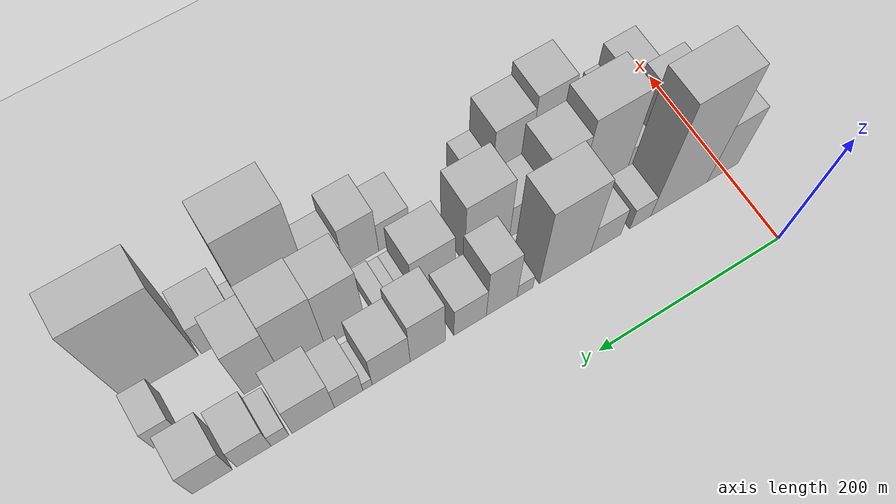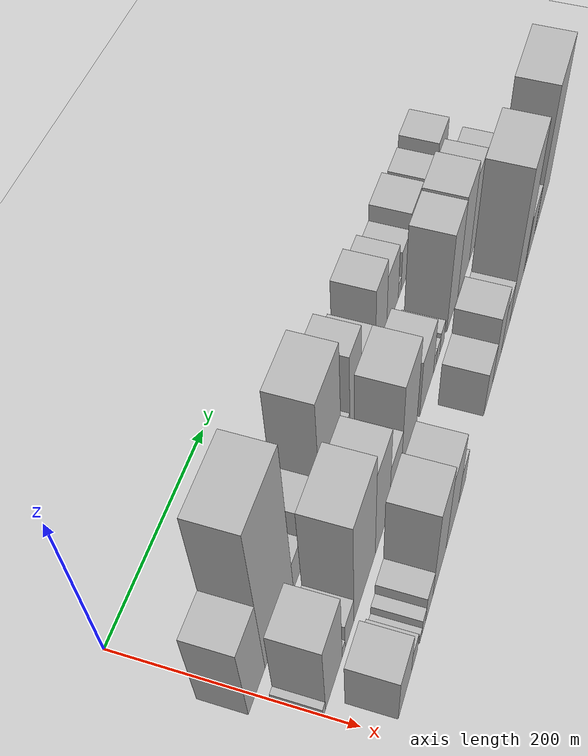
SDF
<sdf version="1.6">
 <world name="default">
  <include>
   <name>ground_plane_2</name>
   <uri>model://HANNAS_ground_plane</uri>
   <pose>100 0 0  0 0 0</pose>
  </include>
  <model name="building_16">
   <static>1</static>
   <pose>100.0000 3.0005 0 0.000000 0.000000 0.000000</pose>
   <link name="link">
    <pose>0 0 55.50 0 0 0</pose>
    <collision name="collision"><geometry><box><size>40.0000 35.9050 111.0000</size></box></geometry></collision>
    <visual name="visual">
     <cast_shadows>0</cast_shadows>
     <geometry><box><size>40.0000 35.9050 111.0000</size></box></geometry>
     <material>
      <script>
       <uri>model://HANNAS_wall/materials/scripts</uri>
       <uri>model://HANNAS_wall/materials/textures</uri>
       <name>vrc/HANNAS_wall</name>
      </script>
     </material>
    </visual>
   </link>
  </model>
  <model name="building_17">
   <static>1</static>
   <pose>100.0000 53.5414 0 0.000000 0.000000 0.000000</pose>
   <link name="link">
    <pose>0 0 106.50 0 0 0</pose>
    <collision name="collision"><geometry><box><size>40.0000 65.1768 213.0000</size></box></geometry></collision>
    <visual name="visual">
     <cast_shadows>0</cast_shadows>
     <geometry><box><size>40.0000 65.1768 213.0000</size></box></geometry>
     <material>
      <script>
       <uri>model://HANNAS_wall/materials/scripts</uri>
       <uri>model://HANNAS_wall/materials/textures</uri>
       <name>vrc/HANNAS_wall</name>
      </script>
     </material>
    </visual>
   </link>
  </model>
  <model name="building_18">
   <static>1</static>
   <pose>100.0000 98.0382 0 0.000000 0.000000 0.000000</pose>
   <link name="link">
    <pose>0 0 21.00 0 0 0</pose>
    <collision name="collision"><geometry><box><size>40.0000 23.8167 42.0000</size></box></geometry></collision>
    <visual name="visual">
     <cast_shadows>0</cast_shadows>
     <geometry><box><size>40.0000 23.8167 42.0000</size></box></geometry>
     <material>
      <script>
       <uri>model://HANNAS_wall/materials/scripts</uri>
       <uri>model://HANNAS_wall/materials/textures</uri>
       <name>vrc/HANNAS_wall</name>
      </script>
     </material>
    </visual>
   </link>
  </model>
  <model name="building_19">
   <static>1</static>
   <pose>100.0000 136.8431 0 0.000000 0.000000 0.000000</pose>
   <link name="link">
    <pose>0 0 28.50 0 0 0</pose>
    <collision name="collision"><geometry><box><size>40.0000 33.7931 57.0000</size></box></geometry></collision>
    <visual name="visual">
     <cast_shadows>0</cast_shadows>
     <geometry><box><size>40.0000 33.7931 57.0000</size></box></geometry>
     <material>
      <script>
       <uri>model://HANNAS_wall/materials/scripts</uri>
       <uri>model://HANNAS_wall/materials/textures</uri>
       <name>vrc/HANNAS_wall</name>
      </script>
     </material>
    </visual>
   </link>
  </model>
  <model name="building_20">
   <static>1</static>
   <pose>100.0000 181.7698 0 0.000000 0.000000 0.000000</pose>
   <link name="link">
    <pose>0 0 79.50 0 0 0</pose>
    <collision name="collision"><geometry><box><size>40.0000 56.0602 159.0000</size></box></geometry></collision>
    <visual name="visual">
     <cast_shadows>0</cast_shadows>
     <geometry><box><size>40.0000 56.0602 159.0000</size></box></geometry>
     <material>
      <script>
       <uri>model://HANNAS_wall/materials/scripts</uri>
       <uri>model://HANNAS_wall/materials/textures</uri>
       <name>vrc/HANNAS_wall</name>
      </script>
     </material>
    </visual>
   </link>
  </model>
  <model name="building_21">
   <static>1</static>
   <pose>100.0000 225.4258 0 0.000000 0.000000 0.000000</pose>
   <link name="link">
    <pose>0 0 15.00 0 0 0</pose>
    <collision name="collision"><geometry><box><size>40.0000 17.2519 30.0000</size></box></geometry></collision>
    <visual name="visual">
     <cast_shadows>0</cast_shadows>
     <geometry><box><size>40.0000 17.2519 30.0000</size></box></geometry>
     <material>
      <script>
       <uri>model://HANNAS_wall/materials/scripts</uri>
       <uri>model://HANNAS_wall/materials/textures</uri>
       <name>vrc/HANNAS_wall</name>
      </script>
     </material>
    </visual>
   </link>
  </model>
  <model name="building_22">
   <static>1</static>
   <pose>100.0000 250.4001 0 0.000000 0.000000 0.000000</pose>
   <link name="link">
    <pose>0 0 54.00 0 0 0</pose>
    <collision name="collision"><geometry><box><size>40.0000 32.6967 108.0000</size></box></geometry></collision>
    <visual name="visual">
     <cast_shadows>0</cast_shadows>
     <geometry><box><size>40.0000 32.6967 108.0000</size></box></geometry>
     <material>
      <script>
       <uri>model://HANNAS_wall/materials/scripts</uri>
       <uri>model://HANNAS_wall/materials/textures</uri>
       <name>vrc/HANNAS_wall</name>
      </script>
     </material>
    </visual>
   </link>
  </model>
  <model name="building_23">
   <static>1</static>
   <pose>100.0000 283.7714 0 0.000000 0.000000 0.000000</pose>
   <link name="link">
    <pose>0 0 33.00 0 0 0</pose>
    <collision name="collision"><geometry><box><size>40.0000 34.0458 66.0000</size></box></geometry></collision>
    <visual name="visual">
     <cast_shadows>0</cast_shadows>
     <geometry><box><size>40.0000 34.0458 66.0000</size></box></geometry>
     <material>
      <script>
       <uri>model://HANNAS_wall/materials/scripts</uri>
       <uri>model://HANNAS_wall/materials/textures</uri>
       <name>vrc/HANNAS_wall</name>
      </script>
     </material>
    </visual>
   </link>
  </model>
  <model name="building_24">
   <static>1</static>
   <pose>100.0000 327.9135 0 0.000000 0.000000 0.000000</pose>
   <link name="link">
    <pose>0 0 49.50 0 0 0</pose>
    <collision name="collision"><geometry><box><size>40.0000 36.2383 99.0000</size></box></geometry></collision>
    <visual name="visual">
     <cast_shadows>0</cast_shadows>
     <geometry><box><size>40.0000 36.2383 99.0000</size></box></geometry>
     <material>
      <script>
       <uri>model://HANNAS_wall/materials/scripts</uri>
       <uri>model://HANNAS_wall/materials/textures</uri>
       <name>vrc/HANNAS_wall</name>
      </script>
     </material>
    </visual>
   </link>
  </model>
  <model name="building_25">
   <static>1</static>
   <pose>100.0000 365.3858 0 0.000000 0.000000 0.000000</pose>
   <link name="link">
    <pose>0 0 37.50 0 0 0</pose>
    <collision name="collision"><geometry><box><size>40.0000 38.7064 75.0000</size></box></geometry></collision>
    <visual name="visual">
     <cast_shadows>0</cast_shadows>
     <geometry><box><size>40.0000 38.7064 75.0000</size></box></geometry>
     <material>
      <script>
       <uri>model://HANNAS_wall/materials/scripts</uri>
       <uri>model://HANNAS_wall/materials/textures</uri>
       <name>vrc/HANNAS_wall</name>
      </script>
     </material>
    </visual>
   </link>
  </model>
  <model name="building_26">
   <static>1</static>
   <pose>100.0000 389.5115 0 0.000000 0.000000 0.000000</pose>
   <link name="link">
    <pose>0 0 10.50 0 0 0</pose>
    <collision name="collision"><geometry><box><size>40.0000 9.5450 21.0000</size></box></geometry></collision>
    <visual name="visual">
     <cast_shadows>0</cast_shadows>
     <geometry><box><size>40.0000 9.5450 21.0000</size></box></geometry>
     <material>
      <script>
       <uri>model://HANNAS_wall/materials/scripts</uri>
       <uri>model://HANNAS_wall/materials/textures</uri>
       <name>vrc/HANNAS_wall</name>
      </script>
     </material>
    </visual>
   </link>
  </model>
  <model name="building_27">
   <static>1</static>
   <pose>100.0000 408.4193 0 0.000000 0.000000 0.000000</pose>
   <link name="link">
    <pose>0 0 27.00 0 0 0</pose>
    <collision name="collision"><geometry><box><size>40.0000 28.2707 54.0000</size></box></geometry></collision>
    <visual name="visual">
     <cast_shadows>0</cast_shadows>
     <geometry><box><size>40.0000 28.2707 54.0000</size></box></geometry>
     <material>
      <script>
       <uri>model://HANNAS_wall/materials/scripts</uri>
       <uri>model://HANNAS_wall/materials/textures</uri>
       <name>vrc/HANNAS_wall</name>
      </script>
     </material>
    </visual>
   </link>
  </model>
  <model name="building_28">
   <static>1</static>
   <pose>100.0000 443.5147 0 0.000000 0.000000 0.000000</pose>
   <link name="link">
    <pose>0 0 37.50 0 0 0</pose>
    <collision name="collision"><geometry><box><size>40.0000 41.9201 75.0000</size></box></geometry></collision>
    <visual name="visual">
     <cast_shadows>0</cast_shadows>
     <geometry><box><size>40.0000 41.9201 75.0000</size></box></geometry>
     <material>
      <script>
       <uri>model://HANNAS_wall/materials/scripts</uri>
       <uri>model://HANNAS_wall/materials/textures</uri>
       <name>vrc/HANNAS_wall</name>
      </script>
     </material>
    </visual>
   </link>
  </model>
  <model name="building_29">
   <static>1</static>
   <pose>100.0000 476.2068 0 0.000000 0.000000 0.000000</pose>
   <link name="link">
    <pose>0 0 16.50 0 0 0</pose>
    <collision name="collision"><geometry><box><size>40.0000 17.4642 33.0000</size></box></geometry></collision>
    <visual name="visual">
     <cast_shadows>0</cast_shadows>
     <geometry><box><size>40.0000 17.4642 33.0000</size></box></geometry>
     <material>
      <script>
       <uri>model://HANNAS_wall/materials/scripts</uri>
       <uri>model://HANNAS_wall/materials/textures</uri>
       <name>vrc/HANNAS_wall</name>
      </script>
     </material>
    </visual>
   </link>
  </model>
  <model name="building_30">
   <static>1</static>
   <pose>100.0000 501.6357 0 0.000000 0.000000 0.000000</pose>
   <link name="link">
    <pose>0 0 28.50 0 0 0</pose>
    <collision name="collision"><geometry><box><size>40.0000 33.3936 57.0000</size></box></geometry></collision>
    <visual name="visual">
     <cast_shadows>0</cast_shadows>
     <geometry><box><size>40.0000 33.3936 57.0000</size></box></geometry>
     <material>
      <script>
       <uri>model://HANNAS_wall/materials/scripts</uri>
       <uri>model://HANNAS_wall/materials/textures</uri>
       <name>vrc/HANNAS_wall</name>
      </script>
     </material>
    </visual>
   </link>
  </model>
  <model name="building_31">
   <static>1</static>
   <pose>100.0000 541.3579 0 0.000000 0.000000 0.000000</pose>
   <link name="link">
    <pose>0 0 34.50 0 0 0</pose>
    <collision name="collision"><geometry><box><size>40.0000 38.0507 69.0000</size></box></geometry></collision>
    <visual name="visual">
     <cast_shadows>0</cast_shadows>
     <geometry><box><size>40.0000 38.0507 69.0000</size></box></geometry>
     <material>
      <script>
       <uri>model://HANNAS_wall/materials/scripts</uri>
       <uri>model://HANNAS_wall/materials/textures</uri>
       <name>vrc/HANNAS_wall</name>
      </script>
     </material>
    </visual>
   </link>
  </model>
  <model name="building_47">
   <static>1</static>
   <pose>152.0000 1.7145 0 0.000000 0.000000 0.000000</pose>
   <link name="link">
    <pose>0 0 7.50 0 0 0</pose>
    <collision name="collision"><geometry><box><size>40.0000 6.3053 15.0000</size></box></geometry></collision>
    <visual name="visual">
     <cast_shadows>0</cast_shadows>
     <geometry><box><size>40.0000 6.3053 15.0000</size></box></geometry>
     <material>
      <script>
       <uri>model://HANNAS_wall/materials/scripts</uri>
       <uri>model://HANNAS_wall/materials/textures</uri>
       <name>vrc/HANNAS_wall</name>
      </script>
     </material>
    </visual>
   </link>
  </model>
  <model name="building_48">
   <static>1</static>
   <pose>152.0000 25.0388 0 0.000000 0.000000 0.000000</pose>
   <link name="link">
    <pose>0 0 52.50 0 0 0</pose>
    <collision name="collision"><geometry><box><size>40.0000 40.3432 105.0000</size></box></geometry></collision>
    <visual name="visual">
     <cast_shadows>0</cast_shadows>
     <geometry><box><size>40.0000 40.3432 105.0000</size></box></geometry>
     <material>
      <script>
       <uri>model://HANNAS_wall/materials/scripts</uri>
       <uri>model://HANNAS_wall/materials/textures</uri>
       <name>vrc/HANNAS_wall</name>
      </script>
     </material>
    </visual>
   </link>
  </model>
  <model name="building_49">
   <static>1</static>
   <pose>152.0000 48.9055 0 0.000000 0.000000 0.000000</pose>
   <link name="link">
    <pose>0 0 7.50 0 0 0</pose>
    <collision name="collision"><geometry><box><size>40.0000 7.3902 15.0000</size></box></geometry></collision>
    <visual name="visual">
     <cast_shadows>0</cast_shadows>
     <geometry><box><size>40.0000 7.3902 15.0000</size></box></geometry>
     <material>
      <script>
       <uri>model://HANNAS_wall/materials/scripts</uri>
       <uri>model://HANNAS_wall/materials/textures</uri>
       <name>vrc/HANNAS_wall</name>
      </script>
     </material>
    </visual>
   </link>
  </model>
  <model name="building_50">
   <static>1</static>
   <pose>152.0000 63.6594 0 0.000000 0.000000 0.000000</pose>
   <link name="link">
    <pose>0 0 19.50 0 0 0</pose>
    <collision name="collision"><geometry><box><size>40.0000 22.1176 39.0000</size></box></geometry></collision>
    <visual name="visual">
     <cast_shadows>0</cast_shadows>
     <geometry><box><size>40.0000 22.1176 39.0000</size></box></geometry>
     <material>
      <script>
       <uri>model://HANNAS_wall/materials/scripts</uri>
       <uri>model://HANNAS_wall/materials/textures</uri>
       <name>vrc/HANNAS_wall</name>
      </script>
     </material>
    </visual>
   </link>
  </model>
  <model name="building_51">
   <static>1</static>
   <pose>152.0000 103.4163 0 0.000000 0.000000 0.000000</pose>
   <link name="link">
    <pose>0 0 75.00 0 0 0</pose>
    <collision name="collision"><geometry><box><size>40.0000 57.3961 150.0000</size></box></geometry></collision>
    <visual name="visual">
     <cast_shadows>0</cast_shadows>
     <geometry><box><size>40.0000 57.3961 150.0000</size></box></geometry>
     <material>
      <script>
       <uri>model://HANNAS_wall/materials/scripts</uri>
       <uri>model://HANNAS_wall/materials/textures</uri>
       <name>vrc/HANNAS_wall</name>
      </script>
     </material>
    </visual>
   </link>
  </model>
  <model name="building_52">
   <static>1</static>
   <pose>152.0000 152.4315 0 0.000000 0.000000 0.000000</pose>
   <link name="link">
    <pose>0 0 61.50 0 0 0</pose>
    <collision name="collision"><geometry><box><size>40.0000 40.6344 123.0000</size></box></geometry></collision>
    <visual name="visual">
     <cast_shadows>0</cast_shadows>
     <geometry><box><size>40.0000 40.6344 123.0000</size></box></geometry>
     <material>
      <script>
       <uri>model://HANNAS_wall/materials/scripts</uri>
       <uri>model://HANNAS_wall/materials/textures</uri>
       <name>vrc/HANNAS_wall</name>
      </script>
     </material>
    </visual>
   </link>
  </model>
  <model name="building_53">
   <static>1</static>
   <pose>152.0000 190.2882 0 0.000000 0.000000 0.000000</pose>
   <link name="link">
    <pose>0 0 33.00 0 0 0</pose>
    <collision name="collision"><geometry><box><size>40.0000 35.0790 66.0000</size></box></geometry></collision>
    <visual name="visual">
     <cast_shadows>0</cast_shadows>
     <geometry><box><size>40.0000 35.0790 66.0000</size></box></geometry>
     <material>
      <script>
       <uri>model://HANNAS_wall/materials/scripts</uri>
       <uri>model://HANNAS_wall/materials/textures</uri>
       <name>vrc/HANNAS_wall</name>
      </script>
     </material>
    </visual>
   </link>
  </model>
  <model name="building_54">
   <static>1</static>
   <pose>152.0000 232.1767 0 0.000000 0.000000 0.000000</pose>
   <link name="link">
    <pose>0 0 63.00 0 0 0</pose>
    <collision name="collision"><geometry><box><size>40.0000 48.6980 126.0000</size></box></geometry></collision>
    <visual name="visual">
     <cast_shadows>0</cast_shadows>
     <geometry><box><size>40.0000 48.6980 126.0000</size></box></geometry>
     <material>
      <script>
       <uri>model://HANNAS_wall/materials/scripts</uri>
       <uri>model://HANNAS_wall/materials/textures</uri>
       <name>vrc/HANNAS_wall</name>
      </script>
     </material>
    </visual>
   </link>
  </model>
  <model name="building_55">
   <static>1</static>
   <pose>152.0000 289.7147 0 0.000000 0.000000 0.000000</pose>
   <link name="link">
    <pose>0 0 39.00 0 0 0</pose>
    <collision name="collision"><geometry><box><size>40.0000 46.3780 78.0000</size></box></geometry></collision>
    <visual name="visual">
     <cast_shadows>0</cast_shadows>
     <geometry><box><size>40.0000 46.3780 78.0000</size></box></geometry>
     <material>
      <script>
       <uri>model://HANNAS_wall/materials/scripts</uri>
       <uri>model://HANNAS_wall/materials/textures</uri>
       <name>vrc/HANNAS_wall</name>
      </script>
     </material>
    </visual>
   </link>
  </model>
  <model name="building_56">
   <static>1</static>
   <pose>152.0000 317.9338 0 0.000000 0.000000 0.000000</pose>
   <link name="link">
    <pose>0 0 12.00 0 0 0</pose>
    <collision name="collision"><geometry><box><size>40.0000 10.0603 24.0000</size></box></geometry></collision>
    <visual name="visual">
     <cast_shadows>0</cast_shadows>
     <geometry><box><size>40.0000 10.0603 24.0000</size></box></geometry>
     <material>
      <script>
       <uri>model://HANNAS_wall/materials/scripts</uri>
       <uri>model://HANNAS_wall/materials/textures</uri>
       <name>vrc/HANNAS_wall</name>
      </script>
     </material>
    </visual>
   </link>
  </model>
  <model name="building_57">
   <static>1</static>
   <pose>152.0000 328.8842 0 0.000000 0.000000 0.000000</pose>
   <link name="link">
    <pose>0 0 12.00 0 0 0</pose>
    <collision name="collision"><geometry><box><size>40.0000 11.8404 24.0000</size></box></geometry></collision>
    <visual name="visual">
     <cast_shadows>0</cast_shadows>
     <geometry><box><size>40.0000 11.8404 24.0000</size></box></geometry>
     <material>
      <script>
       <uri>model://HANNAS_wall/materials/scripts</uri>
       <uri>model://HANNAS_wall/materials/textures</uri>
       <name>vrc/HANNAS_wall</name>
      </script>
     </material>
    </visual>
   </link>
  </model>
  <model name="building_58">
   <static>1</static>
   <pose>152.0000 342.7332 0 0.000000 0.000000 0.000000</pose>
   <link name="link">
    <pose>0 0 15.00 0 0 0</pose>
    <collision name="collision"><geometry><box><size>40.0000 15.8577 30.0000</size></box></geometry></collision>
    <visual name="visual">
     <cast_shadows>0</cast_shadows>
     <geometry><box><size>40.0000 15.8577 30.0000</size></box></geometry>
     <material>
      <script>
       <uri>model://HANNAS_wall/materials/scripts</uri>
       <uri>model://HANNAS_wall/materials/textures</uri>
       <name>vrc/HANNAS_wall</name>
      </script>
     </material>
    </visual>
   </link>
  </model>
  <model name="building_59">
   <static>1</static>
   <pose>152.0000 381.2600 0 0.000000 0.000000 0.000000</pose>
   <link name="link">
    <pose>0 0 64.50 0 0 0</pose>
    <collision name="collision"><geometry><box><size>40.0000 41.1958 129.0000</size></box></geometry></collision>
    <visual name="visual">
     <cast_shadows>0</cast_shadows>
     <geometry><box><size>40.0000 41.1958 129.0000</size></box></geometry>
     <material>
      <script>
       <uri>model://HANNAS_wall/materials/scripts</uri>
       <uri>model://HANNAS_wall/materials/textures</uri>
       <name>vrc/HANNAS_wall</name>
      </script>
     </material>
    </visual>
   </link>
  </model>
  <model name="building_60">
   <static>1</static>
   <pose>152.0000 424.4906 0 0.000000 0.000000 0.000000</pose>
   <link name="link">
    <pose>0 0 66.00 0 0 0</pose>
    <collision name="collision"><geometry><box><size>40.0000 45.2656 132.0000</size></box></geometry></collision>
    <visual name="visual">
     <cast_shadows>0</cast_shadows>
     <geometry><box><size>40.0000 45.2656 132.0000</size></box></geometry>
     <material>
      <script>
       <uri>model://HANNAS_wall/materials/scripts</uri>
       <uri>model://HANNAS_wall/materials/textures</uri>
       <name>vrc/HANNAS_wall</name>
      </script>
     </material>
    </visual>
   </link>
  </model>
  <model name="building_61">
   <static>1</static>
   <pose>152.0000 465.1203 0 0.000000 0.000000 0.000000</pose>
   <link name="link">
    <pose>0 0 57.00 0 0 0</pose>
    <collision name="collision"><geometry><box><size>40.0000 35.9937 114.0000</size></box></geometry></collision>
    <visual name="visual">
     <cast_shadows>0</cast_shadows>
     <geometry><box><size>40.0000 35.9937 114.0000</size></box></geometry>
     <material>
      <script>
       <uri>model://HANNAS_wall/materials/scripts</uri>
       <uri>model://HANNAS_wall/materials/textures</uri>
       <name>vrc/HANNAS_wall</name>
      </script>
     </material>
    </visual>
   </link>
  </model>
  <model name="building_62">
   <static>1</static>
   <pose>152.0000 557.7940 0 0.000000 0.000000 0.000000</pose>
   <link name="link">
    <pose>0 0 25.50 0 0 0</pose>
    <collision name="collision"><geometry><box><size>40.0000 25.7845 51.0000</size></box></geometry></collision>
    <visual name="visual">
     <cast_shadows>0</cast_shadows>
     <geometry><box><size>40.0000 25.7845 51.0000</size></box></geometry>
     <material>
      <script>
       <uri>model://HANNAS_wall/materials/scripts</uri>
       <uri>model://HANNAS_wall/materials/textures</uri>
       <name>vrc/HANNAS_wall</name>
      </script>
     </material>
    </visual>
   </link>
  </model>
  <model name="building_80">
   <static>1</static>
   <pose>204.0000 30.9672 0 0.000000 0.000000 0.000000</pose>
   <link name="link">
    <pose>0 0 34.50 0 0 0</pose>
    <collision name="collision"><geometry><box><size>40.0000 35.7531 69.0000</size></box></geometry></collision>
    <visual name="visual">
     <cast_shadows>0</cast_shadows>
     <geometry><box><size>40.0000 35.7531 69.0000</size></box></geometry>
     <material>
      <script>
       <uri>model://HANNAS_wall/materials/scripts</uri>
       <uri>model://HANNAS_wall/materials/textures</uri>
       <name>vrc/HANNAS_wall</name>
      </script>
     </material>
    </visual>
   </link>
  </model>
  <model name="building_81">
   <static>1</static>
   <pose>204.0000 57.2910 0 0.000000 0.000000 0.000000</pose>
   <link name="link">
    <pose>0 0 16.50 0 0 0</pose>
    <collision name="collision"><geometry><box><size>40.0000 16.8944 33.0000</size></box></geometry></collision>
    <visual name="visual">
     <cast_shadows>0</cast_shadows>
     <geometry><box><size>40.0000 16.8944 33.0000</size></box></geometry>
     <material>
      <script>
       <uri>model://HANNAS_wall/materials/scripts</uri>
       <uri>model://HANNAS_wall/materials/textures</uri>
       <name>vrc/HANNAS_wall</name>
      </script>
     </material>
    </visual>
   </link>
  </model>
  <model name="building_82">
   <static>1</static>
   <pose>204.0000 74.9372 0 0.000000 0.000000 0.000000</pose>
   <link name="link">
    <pose>0 0 7.50 0 0 0</pose>
    <collision name="collision"><geometry><box><size>40.0000 6.3979 15.0000</size></box></geometry></collision>
    <visual name="visual">
     <cast_shadows>0</cast_shadows>
     <geometry><box><size>40.0000 6.3979 15.0000</size></box></geometry>
     <material>
      <script>
       <uri>model://HANNAS_wall/materials/scripts</uri>
       <uri>model://HANNAS_wall/materials/textures</uri>
       <name>vrc/HANNAS_wall</name>
      </script>
     </material>
    </visual>
   </link>
  </model>
  <model name="building_83">
   <static>1</static>
   <pose>204.0000 83.6290 0 0.000000 0.000000 0.000000</pose>
   <link name="link">
    <pose>0 0 13.50 0 0 0</pose>
    <collision name="collision"><geometry><box><size>40.0000 10.9857 27.0000</size></box></geometry></collision>
    <visual name="visual">
     <cast_shadows>0</cast_shadows>
     <geometry><box><size>40.0000 10.9857 27.0000</size></box></geometry>
     <material>
      <script>
       <uri>model://HANNAS_wall/materials/scripts</uri>
       <uri>model://HANNAS_wall/materials/textures</uri>
       <name>vrc/HANNAS_wall</name>
      </script>
     </material>
    </visual>
   </link>
  </model>
  <model name="building_84">
   <static>1</static>
   <pose>204.0000 100.2089 0 0.000000 0.000000 0.000000</pose>
   <link name="link">
    <pose>0 0 21.00 0 0 0</pose>
    <collision name="collision"><geometry><box><size>40.0000 22.1742 42.0000</size></box></geometry></collision>
    <visual name="visual">
     <cast_shadows>0</cast_shadows>
     <geometry><box><size>40.0000 22.1742 42.0000</size></box></geometry>
     <material>
      <script>
       <uri>model://HANNAS_wall/materials/scripts</uri>
       <uri>model://HANNAS_wall/materials/textures</uri>
       <name>vrc/HANNAS_wall</name>
      </script>
     </material>
    </visual>
   </link>
  </model>
  <model name="building_85">
   <static>1</static>
   <pose>204.0000 131.5610 0 0.000000 0.000000 0.000000</pose>
   <link name="link">
    <pose>0 0 64.50 0 0 0</pose>
    <collision name="collision"><geometry><box><size>40.0000 40.5299 129.0000</size></box></geometry></collision>
    <visual name="visual">
     <cast_shadows>0</cast_shadows>
     <geometry><box><size>40.0000 40.5299 129.0000</size></box></geometry>
     <material>
      <script>
       <uri>model://HANNAS_wall/materials/scripts</uri>
       <uri>model://HANNAS_wall/materials/textures</uri>
       <name>vrc/HANNAS_wall</name>
      </script>
     </material>
    </visual>
   </link>
  </model>
  <model name="building_86">
   <static>1</static>
   <pose>204.0000 172.6373 0 0.000000 0.000000 0.000000</pose>
   <link name="link">
    <pose>0 0 54.00 0 0 0</pose>
    <collision name="collision"><geometry><box><size>40.0000 41.6226 108.0000</size></box></geometry></collision>
    <visual name="visual">
     <cast_shadows>0</cast_shadows>
     <geometry><box><size>40.0000 41.6226 108.0000</size></box></geometry>
     <material>
      <script>
       <uri>model://HANNAS_wall/materials/scripts</uri>
       <uri>model://HANNAS_wall/materials/textures</uri>
       <name>vrc/HANNAS_wall</name>
      </script>
     </material>
    </visual>
   </link>
  </model>
  <model name="building_87">
   <static>1</static>
   <pose>204.0000 205.5689 0 0.000000 0.000000 0.000000</pose>
   <link name="link">
    <pose>0 0 24.00 0 0 0</pose>
    <collision name="collision"><geometry><box><size>40.0000 24.2407 48.0000</size></box></geometry></collision>
    <visual name="visual">
     <cast_shadows>0</cast_shadows>
     <geometry><box><size>40.0000 24.2407 48.0000</size></box></geometry>
     <material>
      <script>
       <uri>model://HANNAS_wall/materials/scripts</uri>
       <uri>model://HANNAS_wall/materials/textures</uri>
       <name>vrc/HANNAS_wall</name>
      </script>
     </material>
    </visual>
   </link>
  </model>
  <model name="building_88">
   <static>1</static>
   <pose>204.0000 299.3411 0 0.000000 0.000000 0.000000</pose>
   <link name="link">
    <pose>0 0 30.00 0 0 0</pose>
    <collision name="collision"><geometry><box><size>40.0000 33.1012 60.0000</size></box></geometry></collision>
    <visual name="visual">
     <cast_shadows>0</cast_shadows>
     <geometry><box><size>40.0000 33.1012 60.0000</size></box></geometry>
     <material>
      <script>
       <uri>model://HANNAS_wall/materials/scripts</uri>
       <uri>model://HANNAS_wall/materials/textures</uri>
       <name>vrc/HANNAS_wall</name>
      </script>
     </material>
    </visual>
   </link>
  </model>
  <model name="building_89">
   <static>1</static>
   <pose>204.0000 333.5940 0 0.000000 0.000000 0.000000</pose>
   <link name="link">
    <pose>0 0 46.50 0 0 0</pose>
    <collision name="collision"><geometry><box><size>40.0000 35.4046 93.0000</size></box></geometry></collision>
    <visual name="visual">
     <cast_shadows>0</cast_shadows>
     <geometry><box><size>40.0000 35.4046 93.0000</size></box></geometry>
     <material>
      <script>
       <uri>model://HANNAS_wall/materials/scripts</uri>
       <uri>model://HANNAS_wall/materials/textures</uri>
       <name>vrc/HANNAS_wall</name>
      </script>
     </material>
    </visual>
   </link>
  </model>
  <model name="building_90">
   <static>1</static>
   <pose>204.0000 368.6467 0 0.000000 0.000000 0.000000</pose>
   <link name="link">
    <pose>0 0 30.00 0 0 0</pose>
    <collision name="collision"><geometry><box><size>40.0000 34.7008 60.0000</size></box></geometry></collision>
    <visual name="visual">
     <cast_shadows>0</cast_shadows>
     <geometry><box><size>40.0000 34.7008 60.0000</size></box></geometry>
     <material>
      <script>
       <uri>model://HANNAS_wall/materials/scripts</uri>
       <uri>model://HANNAS_wall/materials/textures</uri>
       <name>vrc/HANNAS_wall</name>
      </script>
     </material>
    </visual>
   </link>
  </model>
  <model name="building_91">
   <static>1</static>
   <pose>204.0000 416.2973 0 0.000000 0.000000 0.000000</pose>
   <link name="link">
    <pose>0 0 97.50 0 0 0</pose>
    <collision name="collision"><geometry><box><size>40.0000 60.6003 195.0000</size></box></geometry></collision>
    <visual name="visual">
     <cast_shadows>0</cast_shadows>
     <geometry><box><size>40.0000 60.6003 195.0000</size></box></geometry>
     <material>
      <script>
       <uri>model://HANNAS_wall/materials/scripts</uri>
       <uri>model://HANNAS_wall/materials/textures</uri>
       <name>vrc/HANNAS_wall</name>
      </script>
     </material>
    </visual>
   </link>
  </model>
  <model name="building_92">
   <static>1</static>
   <pose>204.0000 451.5710 0 0.000000 0.000000 0.000000</pose>
   <link name="link">
    <pose>0 0 10.50 0 0 0</pose>
    <collision name="collision"><geometry><box><size>40.0000 9.9471 21.0000</size></box></geometry></collision>
    <visual name="visual">
     <cast_shadows>0</cast_shadows>
     <geometry><box><size>40.0000 9.9471 21.0000</size></box></geometry>
     <material>
      <script>
       <uri>model://HANNAS_wall/materials/scripts</uri>
       <uri>model://HANNAS_wall/materials/textures</uri>
       <name>vrc/HANNAS_wall</name>
      </script>
     </material>
    </visual>
   </link>
  </model>
  <model name="building_93">
   <static>1</static>
   <pose>204.0000 476.9838 0 0.000000 0.000000 0.000000</pose>
   <link name="link">
    <pose>0 0 34.50 0 0 0</pose>
    <collision name="collision"><geometry><box><size>40.0000 40.8784 69.0000</size></box></geometry></collision>
    <visual name="visual">
     <cast_shadows>0</cast_shadows>
     <geometry><box><size>40.0000 40.8784 69.0000</size></box></geometry>
     <material>
      <script>
       <uri>model://HANNAS_wall/materials/scripts</uri>
       <uri>model://HANNAS_wall/materials/textures</uri>
       <name>vrc/HANNAS_wall</name>
      </script>
     </material>
    </visual>
   </link>
  </model>
  <model name="building_94">
   <static>1</static>
   <pose>204.0000 536.6623 0 0.000000 0.000000 0.000000</pose>
   <link name="link">
    <pose>0 0 91.50 0 0 0</pose>
    <collision name="collision"><geometry><box><size>40.0000 72.4787 183.0000</size></box></geometry></collision>
    <visual name="visual">
     <cast_shadows>0</cast_shadows>
     <geometry><box><size>40.0000 72.4787 183.0000</size></box></geometry>
     <material>
      <script>
       <uri>model://HANNAS_wall/materials/scripts</uri>
       <uri>model://HANNAS_wall/materials/textures</uri>
       <name>vrc/HANNAS_wall</name>
      </script>
     </material>
    </visual>
   </link>
  </model>
 </world>
</sdf>
